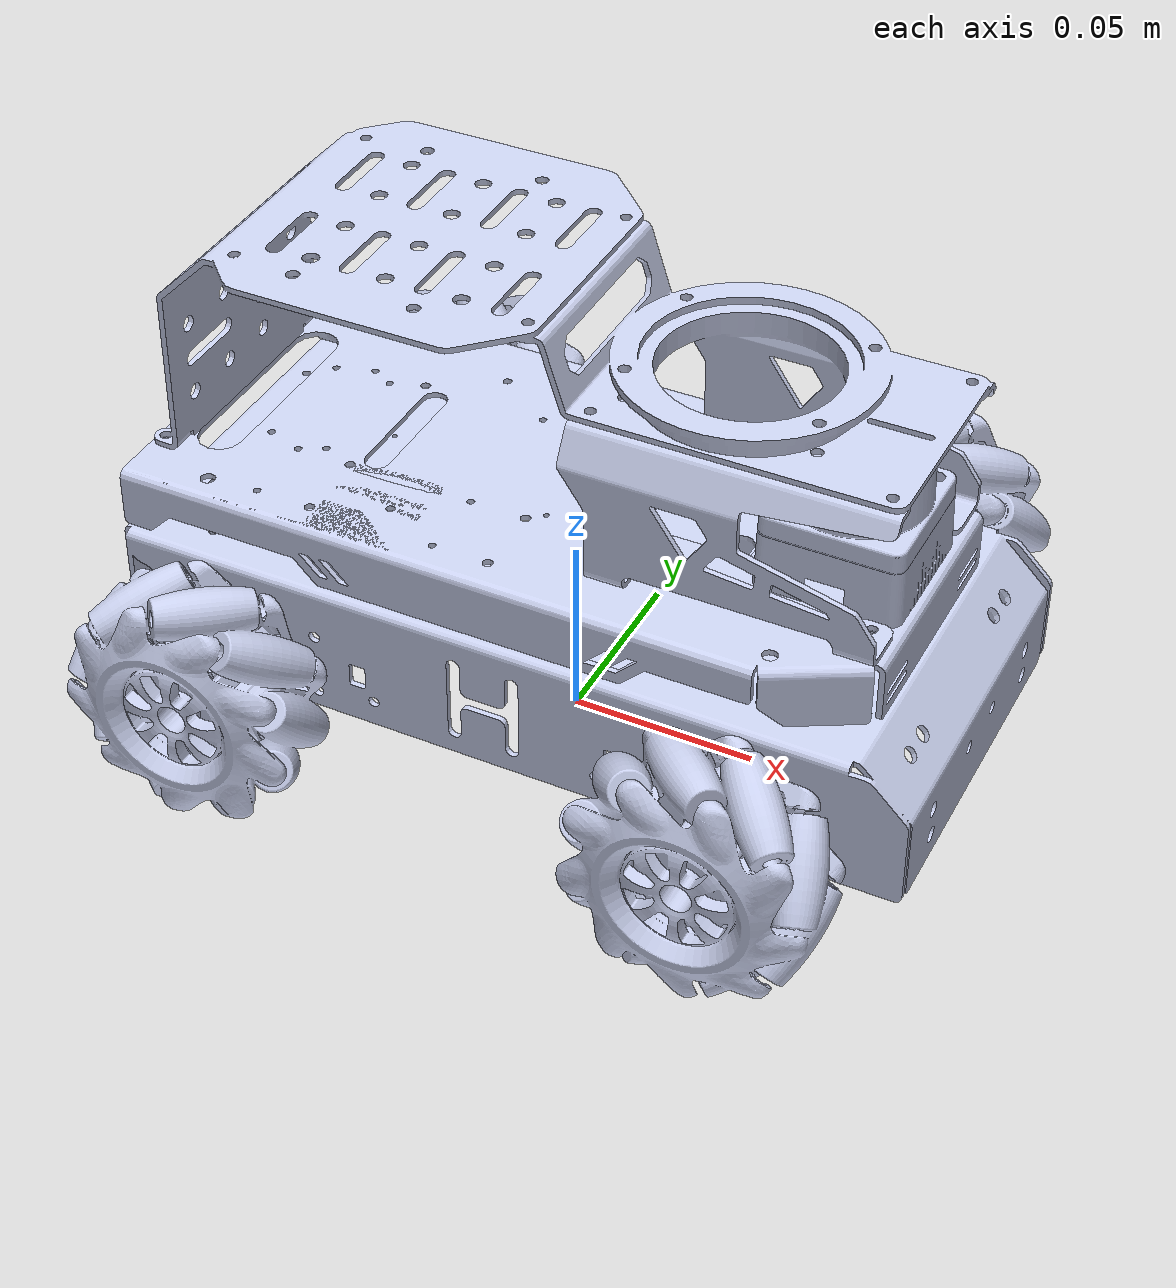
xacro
<?xml version="1.0" encoding="utf-8"?>
<robot xmlns:xacro="http://www.ros.org/wiki/xacro" name="mecanum">
  <!-- 定义 mesh 文件目录 -->
  <xacro:property name="mesh_dir" value="package://landerpi_description/meshes/mecanum" />

  <link name="base_footprint"/>

  <joint name="base_footprint_to_base_link" type="fixed">
    <parent link="base_footprint"/>
    <child link="base_link"/>
    <origin xyz="0 0 0.054" rpy="0 0 0"/>
  </joint>

  <!-- base_link -->
  <link name="base_link">
    <inertial>
      <origin xyz="0.00504187685192947 1.09185161661918E-07 -0.00805033236351077" rpy="0 0 0"/>
      <mass value="0.0549114964726037"/>
      <inertia ixx="8.19348226076021E-05" ixy="5.66571121584358E-10" ixz="2.76933476090848E-06"
               iyy="0.000261801130920988" iyz="-1.79231384469249E-11" izz="0.000329791457319821"/>
    </inertial>
    <visual>
      <origin xyz="0 0 0" rpy="0 0 0"/>
      <geometry>
        <mesh filename="${mesh_dir}/base_link.STL"/>
      </geometry>
      <material name="">
        <color rgba="0.792156862745098 0.819607843137255 0.933333333333333 1"/>
      </material>
    </visual>
    <collision>
      <origin xyz="0 0 0" rpy="0 0 0"/>
      <geometry>
        <mesh filename="${mesh_dir}/base_link.STL"/>
      </geometry>
    </collision>
  </link>

  <!-- back_shell_middle_link -->
  <link name="back_shell_middle_link">
    <inertial>
      <origin xyz="0.00487711474723631 1.58762278157365E-07 -0.0025628797569202" rpy="0 0 0"/>
      <mass value="0.0327390228163219"/>
      <inertia ixx="3.38631253668824E-05" ixy="7.24209708084898E-10" ixz="9.18555297431044E-07"
               iyy="0.000107001002646437" iyz="8.06260466878324E-12" izz="0.000139946335953909"/>
    </inertial>
    <visual>
      <origin xyz="0 0 0" rpy="0 0 0"/>
      <geometry>
        <mesh filename="${mesh_dir}/back_shell_middle_link.STL"/>
      </geometry>
      <material name="">
        <color rgba="0.792156862745098 0.819607843137255 0.933333333333333 1"/>
      </material>
    </visual>
    <collision>
      <origin xyz="0 0 0" rpy="0 0 0"/>
      <geometry>
        <mesh filename="${mesh_dir}/back_shell_middle_link.STL"/>
      </geometry>
    </collision>
  </link>

  <!-- back_shell_middle_joint -->
  <joint name="back_shell_middle_joint" type="fixed">
    <origin xyz="-0.00442651562530816 0 0.018000006985512" rpy="0 0 0"/>
    <parent link="base_link"/>
    <child link="back_shell_middle_link"/>
    <axis xyz="0 0 0"/>
  </joint>

  <!-- back_shell_black_link -->
  <link name="back_shell_black_link">
    <inertial>
      <origin xyz="0.0364751228771575 0.00800016520300745 -0.0179166675870939" rpy="0 0 0"/>
      <mass value="0.0362085392306972"/>
      <inertia ixx="1.7023595821949E-05" ixy="-1.07750548549886E-10" ixz="2.70156859176498E-07"
               iyy="2.27446031500068E-05" iyz="8.68993602274957E-12" izz="3.11741389762819E-05"/>
    </inertial>
    <visual>
      <origin xyz="0 0 0" rpy="0 0 0"/>
      <geometry>
        <mesh filename="${mesh_dir}/back_shell_black_link.STL"/>
      </geometry>
      <material name="">
        <color rgba="0.792156862745098 0.819607843137255 0.933333333333333 1"/>
      </material>
    </visual>
    <collision>
      <origin xyz="0 0 0" rpy="0 0 0"/>
      <geometry>
        <mesh filename="${mesh_dir}/back_shell_black_link.STL"/>
      </geometry>
    </collision>
  </link>

  <!-- back_shell_black_joint -->
  <joint name="back_shell_black_joint" type="fixed">
    <origin xyz="-0.0308199337666247 -0.00800013814077391 0.0599417668336678" rpy="0 0 0"/>
    <parent link="back_shell_middle_link"/>
    <child link="back_shell_black_link"/>
    <axis xyz="0 0 0"/>
  </joint>

  <!-- lidar_link -->
  <link name="lidar_frame">
    <inertial>
      <origin xyz="8.95525878428366E-05 6.449498190296E-05 -0.00525031924280694" rpy="0 0 0"/>
      <mass value="0.0385601724394132"/>
      <inertia ixx="4.66264242687519E-06" ixy="-1.6072319384352E-07" ixz="2.0526387548096E-09"
               iyy="4.71597786598089E-06" iyz="1.10063344618588E-08" izz="7.61241693698137E-06"/>
    </inertial>
    <visual>
      <origin xyz="0 0 0" rpy="0 0 0"/>
      <geometry>
        <mesh filename="${mesh_dir}/lidar_link.STL"/>
      </geometry>
      <material name="">
        <color rgba="0.792156862745098 0.819607843137255 0.933333333333333 1"/>
      </material>
    </visual>
    <collision>
      <origin xyz="0 0 0" rpy="0 0 0"/>
      <geometry>
        <mesh filename="${mesh_dir}/lidar_link.STL"/>
      </geometry>
    </collision>
  </link>

  <!-- lidar_joint -->
  <joint name="lidar_joint" type="fixed">
    <origin xyz="0.077447689677331 0 0.0206999999999998" rpy="0 0 0"/>
    <parent link="back_shell_middle_link"/>
    <child link="lidar_frame"/>
    <axis xyz="0 0 0"/>
  </joint>

  <!-- wheel_left_front_link -->
  <link name="wheel_left_front_link">
    <inertial>
      <origin xyz="3.88969803044453E-05 -0.00231155374534464 3.49803495641177E-05" rpy="0 0 0"/>
      <mass value="0.0379481315569691"/>
      <inertia ixx="3.67997665923715E-06" ixy="-1.4322868285409E-09" ixz="-1.20125267428777E-08"
               iyy="5.74062073311133E-06" iyz="1.72620588597218E-09" izz="3.68307436222746E-06"/>
    </inertial>
    <visual>
      <origin xyz="0 0 0" rpy="0 0 0"/>
      <geometry>
        <mesh filename="${mesh_dir}/wheel_left_front_link.STL"/>
      </geometry>
      <material name="">
        <color rgba="0.792156862745098 0.819607843137255 0.933333333333333 1"/>
      </material>
    </visual>
    <collision>
      <origin xyz="0 0 0" rpy="0 0 0"/>
      <geometry>
        <mesh filename="${mesh_dir}/wheel_left_front_link.STL"/>
      </geometry>
    </collision>
  </link>

  <!-- wheel_left_front_joint -->
  <joint name="wheel_left_front_joint" type="continuous">
    <origin xyz="0.066774 0.073754 -0.021099" rpy="0 0 0"/>
    <parent link="base_link"/>
    <child link="wheel_left_front_link"/>
    <axis xyz="0 1 0"/>
    <limit lower="0" upper="0" effort="0" velocity="0"/>
  </joint>

  <!-- wheel_left_back_link -->
  <link name="wheel_left_back_link">
    <inertial>
      <origin xyz="-6.69235237865662E-05 -0.00231162953851863 4.43085844460608E-05" rpy="0 0 0"/>
      <mass value="0.0379427212462557"/>
      <inertia ixx="3.6793882030135E-06" ixy="1.4784474286241E-09" ixz="1.20050343006357E-08"
               iyy="5.73965094230239E-06" iyz="1.72600711647378E-09" izz="3.68249805381353E-06"/>
    </inertial>
    <visual>
      <origin xyz="0 0 0" rpy="0 0 0"/>
      <geometry>
        <mesh filename="${mesh_dir}/wheel_left_back_link.STL"/>
      </geometry>
      <material name="">
        <color rgba="0.792156862745098 0.819607843137255 0.933333333333333 1"/>
      </material>
    </visual>
    <collision>
      <origin xyz="0 0 0" rpy="0 0 0"/>
      <geometry>
        <mesh filename="${mesh_dir}/wheel_left_back_link.STL"/>
      </geometry>
    </collision>
  </link>

  <!-- wheel_left_back_joint -->
  <joint name="wheel_left_back_joint" type="continuous">
    <origin xyz="-0.067708 0.073754 -0.021108" rpy="0 0 0"/>
    <parent link="base_link"/>
    <child link="wheel_left_back_link"/>
    <axis xyz="0 1 0"/>
    <limit lower="0" upper="0" effort="0" velocity="0"/>
  </joint>

  <!-- wheel_right_front_link -->
  <link name="wheel_right_front_link">
    <inertial>
      <origin xyz="3.89734921608237E-05 0.00231163938289648 3.50253812373899E-05" rpy="0 0 0"/>
      <mass value="0.0379427158430191"/>
      <inertia ixx="3.67938985841531E-06" ixy="1.47813034909783E-09" ixz="-1.20050715291974E-08"
               iyy="5.73965063854354E-06" iyz="-1.72653963915336E-09" izz="3.68249674493705E-06"/>
    </inertial>
    <visual>
      <origin xyz="0 0 0" rpy="0 0 0"/>
      <geometry>
        <mesh filename="${mesh_dir}/wheel_right_front_link.STL"/>
      </geometry>
      <material name="">
        <color rgba="0.792156862745098 0.819607843137255 0.933333333333333 1"/>
      </material>
    </visual>
    <collision>
      <origin xyz="0 0 0" rpy="0 0 0"/>
      <geometry>
        <mesh filename="${mesh_dir}/wheel_right_front_link.STL"/>
      </geometry>
    </collision>
  </link>

  <!-- wheel_right_front_joint -->
  <joint name="wheel_right_front_joint" type="continuous">
    <origin xyz="0.066774 -0.073754 -0.021099" rpy="0 0 0"/>
    <parent link="base_link"/>
    <child link="wheel_right_front_link"/>
    <axis xyz="0 1 0"/>
    <limit lower="0" upper="0" effort="0" velocity="0"/>
  </joint>

  <!-- wheel_right_back_link -->
  <link name="wheel_right_back_link">
    <inertial>
      <origin xyz="-3.89055915725467E-05 0.00231155209010044 3.49787924077416E-05" rpy="0 0 0"/>
      <mass value="0.0379481367588358"/>
      <inertia ixx="3.67998127492742E-06" ixy="-1.43179163728065E-09" ixz="1.20121549442578E-08"
               iyy="5.74063100516525E-06" iyz="-1.7256588926895E-09" izz="3.68307971185905E-06"/>
    </inertial>
    <visual>
      <origin xyz="0 0 0" rpy="0 0 0"/>
      <geometry>
        <mesh filename="${mesh_dir}/wheel_right_back_link.STL"/>
      </geometry>
      <material name="">
        <color rgba="0.792156862745098 0.819607843137255 0.933333333333333 1"/>
      </material>
    </visual>
    <collision>
      <origin xyz="0 0 0" rpy="0 0 0"/>
      <geometry>
        <mesh filename="${mesh_dir}/wheel_right_back_link.STL"/>
      </geometry>
    </collision>
  </link>

  <!-- wheel_right_back_joint -->
  <joint name="wheel_right_back_joint" type="continuous">
    <origin xyz="-0.067736 -0.073754 -0.021099" rpy="0 0 0"/>
    <parent link="base_link"/>
    <child link="wheel_right_back_link"/>
    <axis xyz="0 1 0"/>
    <limit lower="0" upper="0" effort="0" velocity="0"/>
  </joint>

  <!-- imu_link -->
  <link name="imu_link">
    <inertial>
      <origin xyz="-1.58746927422793E-07 0.00487711474723681 -0.0025628797569202" rpy="0 0 0"/>
      <mass value="0.0327390228163275"/>
      <inertia ixx="0.000107001002646432" ixy="-7.24439910059297E-10" ixz="-8.05971351094487E-12"
               iyy="3.3863125366887E-05" iyz="9.18555297431072E-07" izz="0.000139946335953909"/>
    </inertial>
    <visual>
      <origin xyz="0 0 0" rpy="0 0 0"/>
      <geometry>
        <mesh filename="${mesh_dir}/imu_link.STL"/>
      </geometry>
      <material name="">
        <color rgba="0.792156862745098 0.819607843137255 0.933333333333333 1"/>
      </material>
    </visual>
    <collision>
      <origin xyz="0 0 0" rpy="0 0 0"/>
      <geometry>
        <mesh filename="${mesh_dir}/imu_link.STL"/>
      </geometry>
    </collision>
  </link>

  <!-- imu_joint -->
  <joint name="imu_joint" type="fixed">
    <origin xyz="-0.00442651562530816 0 0.018000006985512" rpy="0 0 -1.5707963260426"/>
    <parent link="base_link"/>
    <child link="imu_link"/>
    <axis xyz="0 0 0"/>
  </joint>
</robot>
